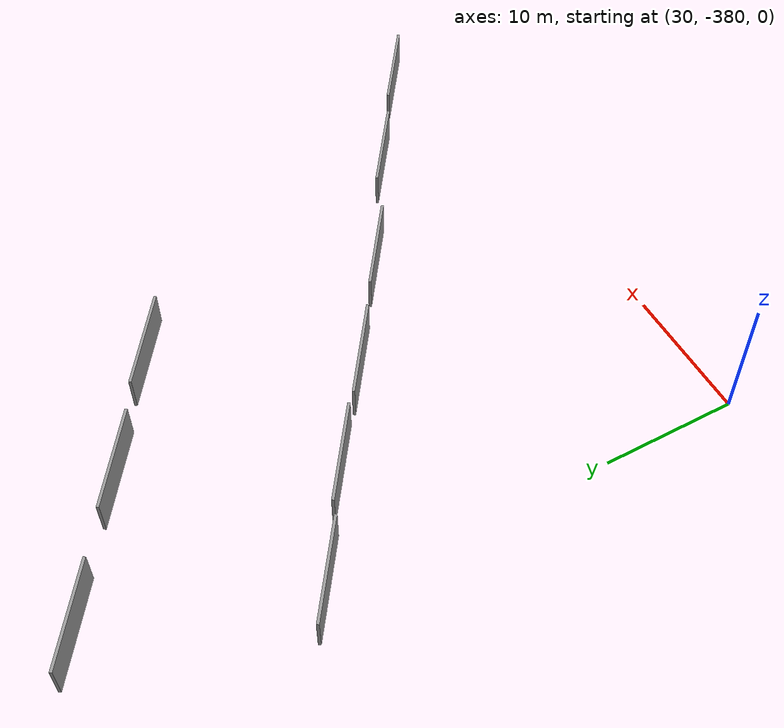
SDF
<sdf version="1.6">
 <world name="default">
  <model name="grey_wall_6">
   <static>1</static>
   <link name="link">
    <pose>0 0 1.4 0 -0 0</pose>
    <collision name="collision"><geometry><box><size>7.5 0.2 2.8</size></box></geometry></collision>
    <visual name="visual">
     <cast_shadows>0</cast_shadows>
     <geometry><box><size>7.5 0.2 2.8</size></box></geometry>
     <material>
      <script>
       <uri>model://grey_wall/materials/scripts</uri>
       <uri>model://grey_wall/materials/textures</uri>
       <name>vrc/grey_wall</name>
      </script>
     </material>
    </visual>
   </link>
   <pose>30.7107 -349.542 0 0 0 -0.61317</pose>
  </model>
  <model name="grey_wall_6_clone">
   <static>1</static>
   <link name="link">
    <pose>0 0 1.4 0 -0 0</pose>
    <collision name="collision"><geometry><box><size>7.5 0.2 2.8</size></box></geometry></collision>
    <visual name="visual">
     <cast_shadows>0</cast_shadows>
     <geometry><box><size>7.5 0.2 2.8</size></box></geometry>
     <material>
      <script>
       <uri>model://grey_wall/materials/scripts</uri>
       <uri>model://grey_wall/materials/textures</uri>
       <name>vrc/grey_wall</name>
      </script>
     </material>
    </visual>
   </link>
   <pose>37.8218 -354.153 0 0 0 -0.61317</pose>
  </model>
  <model name="grey_wall_6_clone_0">
   <static>1</static>
   <link name="link">
    <pose>0 0 1.4 0 -0 0</pose>
    <collision name="collision"><geometry><box><size>7.5 0.2 2.8</size></box></geometry></collision>
    <visual name="visual">
     <cast_shadows>0</cast_shadows>
     <geometry><box><size>7.5 0.2 2.8</size></box></geometry>
     <material>
      <script>
       <uri>model://grey_wall/materials/scripts</uri>
       <uri>model://grey_wall/materials/textures</uri>
       <name>vrc/grey_wall</name>
      </script>
     </material>
    </visual>
   </link>
   <pose>44.6271 -359.151 0 0 0 -0.61317</pose>
  </model>
  <model name="grey_wall_6_clone_1">
   <static>1</static>
   <link name="link">
    <pose>0 0 1.4 0 -0 0</pose>
    <collision name="collision"><geometry><box><size>7.5 0.2 2.8</size></box></geometry></collision>
    <visual name="visual">
     <cast_shadows>0</cast_shadows>
     <geometry><box><size>7.5 0.2 2.8</size></box></geometry>
     <material>
      <script>
       <uri>model://grey_wall/materials/scripts</uri>
       <uri>model://grey_wall/materials/textures</uri>
       <name>vrc/grey_wall</name>
      </script>
     </material>
    </visual>
   </link>
   <pose>52.542 -364.582 0 0 0 -0.61317</pose>
  </model>
  <model name="grey_wall_6_clone_2">
   <static>1</static>
   <link name="link">
    <pose>0 0 1.4 0 -0 0</pose>
    <collision name="collision"><geometry><box><size>7.5 0.2 2.8</size></box></geometry></collision>
    <visual name="visual">
     <cast_shadows>0</cast_shadows>
     <geometry><box><size>7.5 0.2 2.8</size></box></geometry>
     <material>
      <script>
       <uri>model://grey_wall/materials/scripts</uri>
       <uri>model://grey_wall/materials/textures</uri>
       <name>vrc/grey_wall</name>
      </script>
     </material>
    </visual>
   </link>
   <pose>61.4391 -369.909 0 0 0 -0.61317</pose>
  </model>
  <model name="grey_wall_6_clone_3">
   <static>1</static>
   <link name="link">
    <pose>0 0 1.4 0 -0 0</pose>
    <collision name="collision"><geometry><box><size>7.5 0.2 2.8</size></box></geometry></collision>
    <visual name="visual">
     <cast_shadows>0</cast_shadows>
     <geometry><box><size>7.5 0.2 2.8</size></box></geometry>
     <material>
      <script>
       <uri>model://grey_wall/materials/scripts</uri>
       <uri>model://grey_wall/materials/textures</uri>
       <name>vrc/grey_wall</name>
      </script>
     </material>
    </visual>
   </link>
   <pose>69.24 -375.1 0 0 0 -0.61317</pose>
  </model>
  <model name="grey_wall_6_clone_4">
   <static>1</static>
   <link name="link">
    <pose>0 0 1.4 0 -0 0</pose>
    <collision name="collision"><geometry><box><size>7.5 0.2 2.8</size></box></geometry></collision>
    <visual name="visual">
     <cast_shadows>0</cast_shadows>
     <geometry><box><size>7.5 0.2 2.8</size></box></geometry>
     <material>
      <script>
       <uri>model://grey_wall/materials/scripts</uri>
       <uri>model://grey_wall/materials/textures</uri>
       <name>vrc/grey_wall</name>
      </script>
     </material>
    </visual>
   </link>
   <pose>35.4031 -334.726 0 0 0 -0.61317</pose>
  </model>
  <model name="grey_wall_6_clone_5">
   <static>1</static>
   <link name="link">
    <pose>0 0 1.4 0 -0 0</pose>
    <collision name="collision"><geometry><box><size>7.5 0.2 2.8</size></box></geometry></collision>
    <visual name="visual">
     <cast_shadows>0</cast_shadows>
     <geometry><box><size>7.5 0.2 2.8</size></box></geometry>
     <material>
      <script>
       <uri>model://grey_wall/materials/scripts</uri>
       <uri>model://grey_wall/materials/textures</uri>
       <name>vrc/grey_wall</name>
      </script>
     </material>
    </visual>
   </link>
   <pose>44.4269 -340.972 0 0 0 -0.61317</pose>
  </model>
  <model name="grey_wall_6_clone_6">
   <static>1</static>
   <link name="link">
    <pose>0 0 1.4 0 -0 0</pose>
    <collision name="collision"><geometry><box><size>7.5 0.2 2.8</size></box></geometry></collision>
    <visual name="visual">
     <cast_shadows>0</cast_shadows>
     <geometry><box><size>7.5 0.2 2.8</size></box></geometry>
     <material>
      <script>
       <uri>model://grey_wall/materials/scripts</uri>
       <uri>model://grey_wall/materials/textures</uri>
       <name>vrc/grey_wall</name>
      </script>
     </material>
    </visual>
   </link>
   <pose>52.5101 -346.317 0 0 0 -0.61317</pose>
  </model>
 </world>
</sdf>
